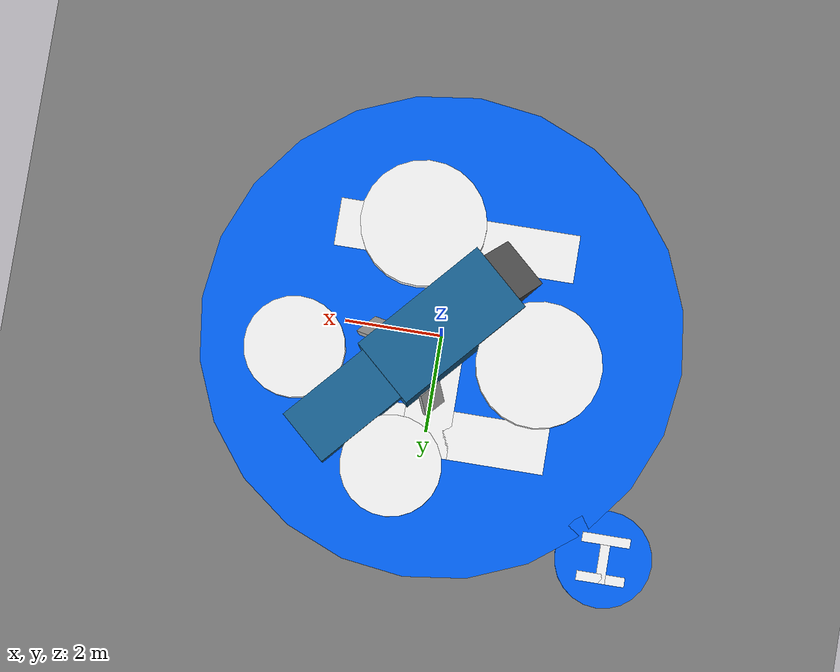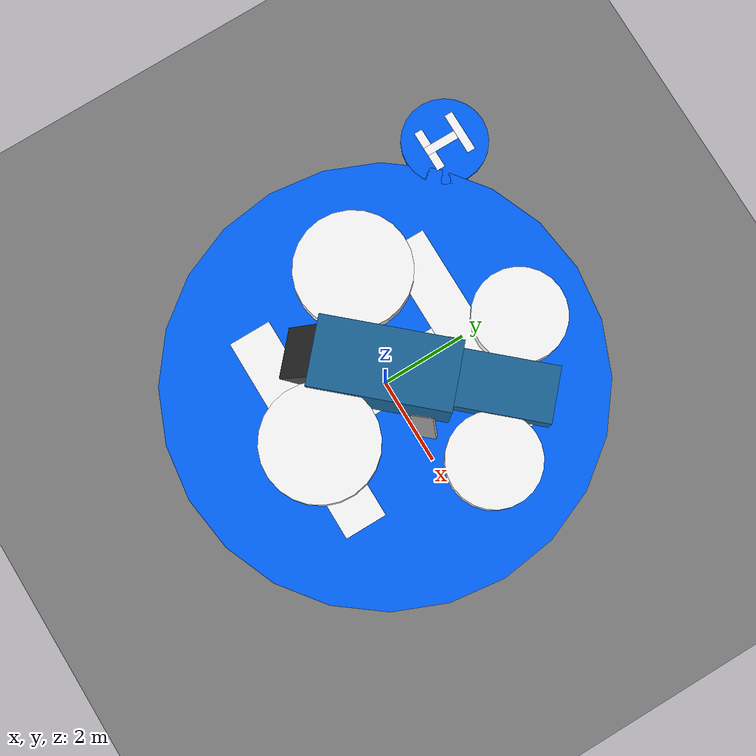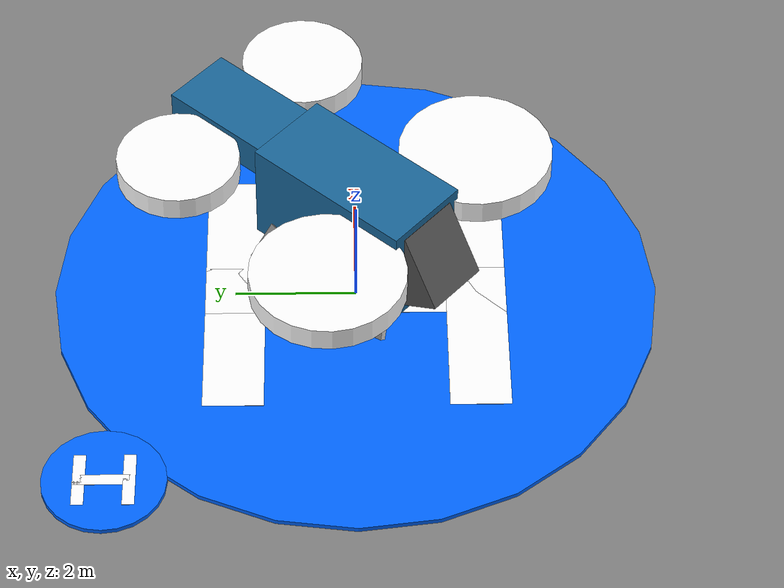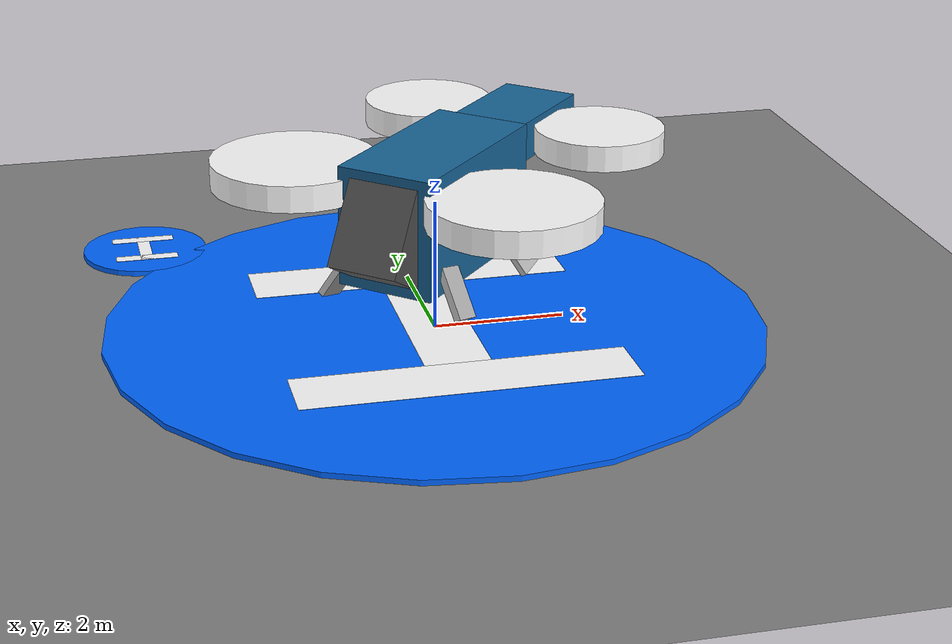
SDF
<sdf version="1.6">
 <world name="I3A world">
  <plugin name="World" filename="libWorld.so"/>
  <include><name>floor</name><uri>../../DC/floor</uri></include>
  <include><name>vertiport1</name><uri>../../UAM/vertiport_H</uri><pose>-4 4 0.05 0 0 0</pose></include>
  <include><name>vertiport5</name><uri>../../UAM/vertiport_H5</uri><pose>0 0 0.05 0 0 0</pose></include>
  <include><name>aguila</name><uri>../../UAM/aerotaxi</uri><pose>0 0 2 0 0 -2.3</pose></include>
  <scene><ambient>0.5 0.5 0.5 1.0</ambient><shadows>true</shadows><origin_visual>false</origin_visual></scene>
  <light type="directional" name="sun">
   <pose>0 0 10 0 0 0</pose>
   <diffuse>1 1 1 1</diffuse>
   <specular>0.2 0.2 0.2 1</specular>
   <attenuation><range>100</range><constant>1</constant></attenuation>
   <direction>0.5 0.1 -0.9</direction>
  </light>
  <physics type="ode">
   <max_step_size>0.001</max_step_size>
   <real_time_update_rate>1000</real_time_update_rate>
  </physics>
 </world>
</sdf>

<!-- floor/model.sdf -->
<sdf version="1.5">

<model name="ground_plane">

<static>true</static>

<link name="link">

  <collision name="collision">

    <geometry>
      <plane>
        <normal>0 0 1</normal>
        <size>200 200</size>
      </plane>
    </geometry>

    <surface>
      <friction>
        <ode>
          <mu>100.0</mu>
          <mu2>50.0</mu2>
          <slip1>0.0</slip1>
          <slip2>0.0</slip2>
        </ode>
      </friction>
    </surface>

  </collision>

  <visual name="visual">

    <cast_shadows>true</cast_shadows>

    <geometry>
      <plane>
        <normal>0 0 1</normal>
        <size>200 200</size>
      </plane>
    </geometry>
    <material>
        <ambient>0.5 0.5 0.5 1</ambient>
        <diffuse>0.5 0.5 0.5 1</diffuse>
    </material>

  </visual>

</link>

</model>
</sdf>

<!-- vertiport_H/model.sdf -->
<sdf version="1.7">

<model name="VertiPort">

<static>true</static>

<link name='link'>

<visual name='barra_izq'>
    <pose>0 -0.4 0.02 0 0 0</pose>
    <geometry>
      <box>
        <size>1 .2 .01</size>
      </box>
    </geometry>
    <material>
      <ambient>1 1 1 1</ambient>
      <diffuse>1 1 1 1</diffuse>
    </material>
</visual>

<visual name='barra_der'>
  <pose>0 0.4 0.02 0 0 0</pose>
  <geometry>
    <box>
      <size>1 .2 .01</size>
    </box>
  </geometry>
  <material>
    <ambient>1 1 1 1</ambient>
    <diffuse>1 1 1 1</diffuse>
  </material>
</visual>

<visual name='travesanho'>
  <pose>0 0 0.02 0 0 0</pose>
  <geometry>
    <box>
      <size>.2 1 .01</size>
    </box>
  </geometry>
  <material>
    <ambient>1 1 1 1</ambient>
    <diffuse>1 1 1 1</diffuse>
  </material>
</visual>

<visual name="circulo">
    <pose>0 0 -0.03 0 0 0</pose>
    <geometry>
        <cylinder>
            <radius>1</radius>
            <length>.1</length>
        </cylinder>
    </geometry>
    <material>
        <ambient>0 0.4 1 1</ambient>  <!--color Red Green Blue Alpha [0-1] -->
        <diffuse>0 0.4 1 1</diffuse>
    </material>
</visual>

<collision name="circulo_col">
    <pose>0 0 -0.03 0 0 0</pose>
    <geometry>
        <cylinder>
            <radius>1</radius>
            <length>.1</length>
        </cylinder>
    </geometry>
    <surface>
        <friction>
            <ode>
            <mu>0.5</mu>
            <mu2>0.5</mu2>
            </ode>
        </friction>
    </surface>
</collision>

</link>

</model>

</sdf>

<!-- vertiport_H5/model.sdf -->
<sdf version="1.7">

<model name="VertiPort">

<static>true</static>

<link name='link'>

<visual name='barra_izq'>
    <pose>0 -2 0.02 0 0 0</pose>
    <geometry>
      <box>
        <size>5 1 0.01</size>
      </box>
    </geometry>
    <material>
      <ambient>1 1 1 1</ambient>
      <diffuse>1 1 1 1</diffuse>
    </material>
</visual>

<visual name='barra_der'>
  <pose>0 2 0.02 0 0 0</pose>
  <geometry>
    <box>
      <size>5 1 .01</size>
    </box>
  </geometry>
  <material>
    <ambient>1 1 1 1</ambient>
    <diffuse>1 1 1 1</diffuse>
  </material>
</visual>

<visual name='travesanho'>
  <pose>0 0 0.02 0 0 0</pose>
  <geometry>
    <box>
      <size>1 5 .01</size>
    </box>
  </geometry>
  <material>
    <ambient>1 1 1 1</ambient>
    <diffuse>1 1 1 1</diffuse>
  </material>
</visual>

<visual name="circulo">
    <pose>0 0 -0.03 0 0 0</pose>
    <geometry>
        <cylinder>
            <radius>5</radius>
            <length>.1</length>
        </cylinder>
    </geometry>
    <material>
        <ambient>0 0.4 1 1</ambient>  <!--color Red Green Blue Alpha [0-1] -->
        <diffuse>0 0.4 1 1</diffuse>
    </material>
</visual>

<collision name="circulo_col">
    <pose>0 0 -0.03 0 0 0</pose>
    <geometry>
        <cylinder>
            <radius>5</radius>
            <length>.1</length>
        </cylinder>
    </geometry>
    <surface>
        <friction>
            <ode>
            <mu>0.5</mu>
            <mu2>0.5</mu2>
            </ode>
        </friction>
    </surface>
</collision>

</link>

</model>

</sdf>

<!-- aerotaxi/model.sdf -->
<sdf version="1.7">

<model name="AeroTaxi">

<static>false</static>
<plugin name="UAM_aerotaxi_cmd" filename="libUAM_aerotaxi_cmd.so">
</plugin>

<link name='dronelink'>

<visual name='cockpit'>
  <pose>1.40 0.00 -0.05 0 -0.5236 0</pose>
  <geometry>
    <box>
      <size>1.00 1.10 1.30</size>
    </box>
  </geometry>
  <material>
    <ambient>0.3 0.3 0.3 1</ambient>
    <diffuse>0.3 0.3 0.3 1</diffuse>
  </material>
</visual>
<collision name='cockpit_col'>
  <pose>1.60 0.00 -0.05 0 -0.5236 0</pose>
  <geometry>
      <box>
        <size>1.00 1.10 1.30</size>
      </box>
    </geometry>
</collision>

<visual name='cabina'>
  <pose>0.00 0.00 0.00 0 0 0</pose>
  <geometry>
    <box>
      <size>3.00 1.50 1.80</size>
    </box>
  </geometry>
  <material>
    <ambient>0.1 0.4 0.6 1</ambient>
    <diffuse>0.1 0.4 0.6 1</diffuse>
  </material>
</visual>
<collision name='cabina_col'>
  <pose>0.00 0.00 0.00 0 0 0</pose>
  <geometry>
      <box>
        <size>3.00 1.50 1.80</size>
      </box>
    </geometry>
</collision>

<visual name='legNW'>
  <pose>1.00 0.90 -0.90 0.52 -0.26 0</pose>
  <geometry>
    <box>
      <size>0.50 0.10 0.80</size>
    </box>
  </geometry>
  <material>
    <ambient>0.7 0.7 0.7 1</ambient>
    <diffuse>0.7 0.7 0.7 1</diffuse>
  </material>
</visual>
<collision name='legNW_col'>
  <pose>1.00 0.90 -0.90 0.52 -0.26 0</pose>
  <geometry>
    <box>
      <size>0.50 0.10 0.80</size>
    </box>
  </geometry>
</collision>

<visual name='legNE'>
  <pose>1.20 -0.90 -0.90 -0.52 -0.26 0</pose>
  <geometry>
    <box>
      <size>0.50 0.10 0.70</size>
    </box>
  </geometry>
  <material>
    <ambient>0.7 0.7 0.7 1</ambient>
    <diffuse>0.7 0.7 0.7 1</diffuse>
  </material>
</visual>
<collision name='legNE_col'>
  <pose>1.20 -0.90 -0.90 -0.52 -0.26 0</pose>
  <geometry>
      <box>
        <size>0.50 0.10 0.70</size>
      </box>
    </geometry>
</collision>

<visual name='legSW'>
  <pose>-1.00 0.90 -0.90 0.52 0.26 0</pose>
  <geometry>
    <box>
      <size>0.50 0.10 0.70</size>
    </box>
  </geometry>
  <material>
    <ambient>0.7 0.7 0.7 1</ambient>
    <diffuse>0.7 0.7 0.7 1</diffuse>
  </material>
</visual>
<collision name='legSW_col'>
  <pose>-1.00 0.90 -0.90 0.52 0.26 0</pose>
  <geometry>
      <box>
        <size>0.50 0.10 0.70</size>
      </box>
    </geometry>
</collision>

<visual name='legSE'>
  <pose>-1.00 -0.90 -0.90 -0.52 0.26 0</pose>
  <geometry>
    <box>
      <size>0.50 0.10 0.70</size>
    </box>
  </geometry>
  <material>
    <ambient>0.7 0.7 0.7 1</ambient>
    <diffuse>0.7 0.7 0.7 1</diffuse>
  </material>
</visual>
<collision name='legSE_col'>
  <pose>-1.00 -0.90 -0.90 -0.52 0.26 0</pose>
  <geometry>
      <box>
        <size>0.50 0.10 0.70</size>
      </box>
    </geometry>
</collision>

<visual name='cola'>
  <pose>-2.50 0.00 0.50 0 0 0</pose>
  <geometry>
    <box>
      <size>2.00 1.20 0.60</size>
    </box>
  </geometry>
  <material>
    <ambient>0.1 0.4 0.6 1</ambient>
    <diffuse>0.1 0.4 0.6 1</diffuse>
  </material>
</visual>
<collision name='cola_col'>
  <pose>-2.50 0.00 0.50 0 0 0</pose>
  <geometry>
      <box>
        <size>2.00 1.20 0.60</size>
      </box>
    </geometry>
</collision>

<visual name='rotorNW'>
  <pose>1.00 1.80 0.50 0 0 0</pose>
  <geometry>
    <cylinder>
      <radius>1.25</radius>
      <length>0.40</length>
    </cylinder>
  </geometry>
  <material>
    <ambient>1.0 1.0 1.0 1</ambient>
    <diffuse>1.0 1.0 1.0 1</diffuse>
  </material>
</visual>
<collision name='rotorNW_col'>
  <pose>1.00 1.80 0.50 0 0 0</pose>
  <geometry>
    <cylinder>
      <radius>1.25</radius>
      <length>0.40</length>
    </cylinder>
  </geometry>
</collision>

<visual name='rotorNE'>
  <pose>1.00 -1.80 0.50 0 0 0</pose>
  <geometry>
    <cylinder>
      <radius>1.25</radius>
      <length>0.40</length>
    </cylinder>
  </geometry>
  <material>
    <ambient>1.0 1.0 1.0 1</ambient>
    <diffuse>1.0 1.0 1.0 1</diffuse>
  </material>
</visual>
<collision name='rotorNE_col'>
  <pose>1.00 -1.80 0.50 0 0 0</pose>
  <geometry>
    <cylinder>
      <radius>1.25</radius>
      <length>0.40</length>
    </cylinder>
  </geometry>
</collision>

<visual name='rotorSW'>
  <pose>-2.50 1.50 0.50 0 0 0</pose>
  <geometry>
    <cylinder>
      <radius>1.00</radius>
      <length>0.40</length>
    </cylinder>
  </geometry>
  <material>
    <ambient>1.0 1.0 1.0 1</ambient>
    <diffuse>1.0 1.0 1.0 1</diffuse>
  </material>
</visual>
<collision name='rotorSW_col'>
  <pose>-2.50 1.50 0.50 0 0 0</pose>
  <geometry>
    <cylinder>
      <radius>1.00</radius>
      <length>0.40</length>
    </cylinder>
  </geometry>
</collision>

<visual name='rotorSE'>
  <pose>-2.50 -1.50 0.50 0 0 0</pose>
  <geometry>
    <cylinder>
      <radius>1.00</radius>
      <length>0.40</length>
    </cylinder>
  </geometry>
  <material>
    <ambient>1.0 1.0 1.0 1</ambient>
    <diffuse>1.0 1.0 1.0 1</diffuse>
  </material>
</visual>
<collision name='rotorSE_col'>
  <pose>-2.50 -1.50 0.50 0 0 0</pose>
  <geometry>
    <cylinder>
      <radius>1.00</radius>
      <length>0.40</length>
    </cylinder>
  </geometry>
</collision>

<inertial>

    <mass>2000</mass>

    <!-- Inercia de caja 4.0 x 2 x 1.5 m3 -->

    <inertia>                <!-- http://en.wikipedia.org/wiki/List_of_moments_of_inertia -->
      <ixx>1041.7</ixx>      for a box: ixx = 1/12 * mass * (y*y + z*z)
      <iyy>3041.7</iyy>      for a box: iyy = 1/12 * mass * (x*x + z*z)
      <izz>3333.3</izz>      for a box: izz = 1/12 * mass * (x*x + y*y)
      <ixy>0.0</ixy>
      <ixz>0.0</ixz>
      <iyz>0.0</iyz>
    </inertia>
</inertial>

</link>

</model>

</sdf>
